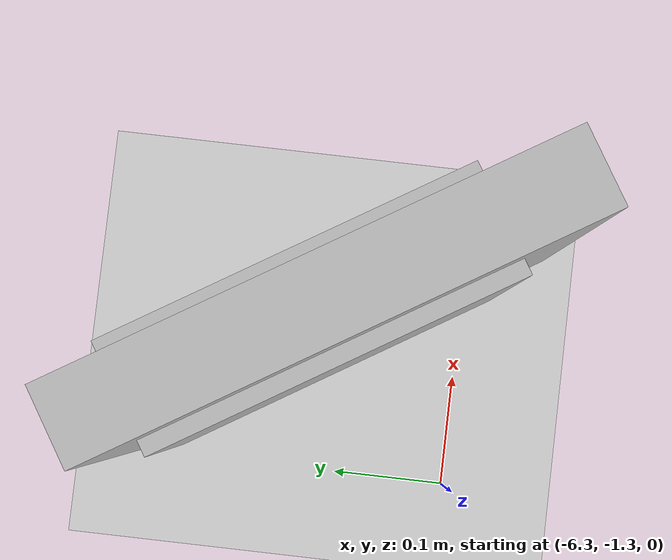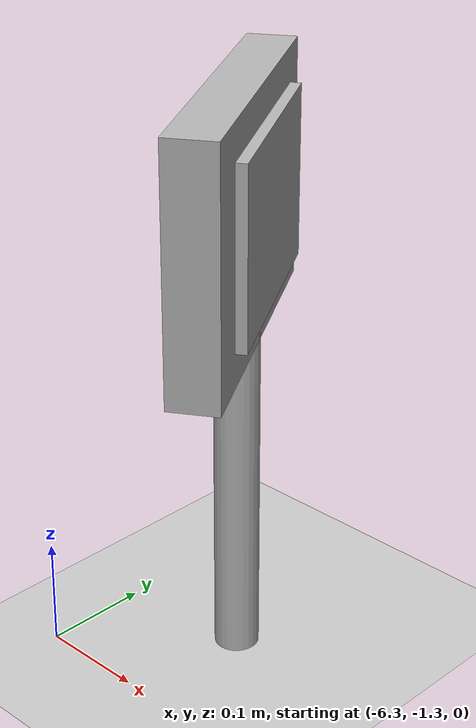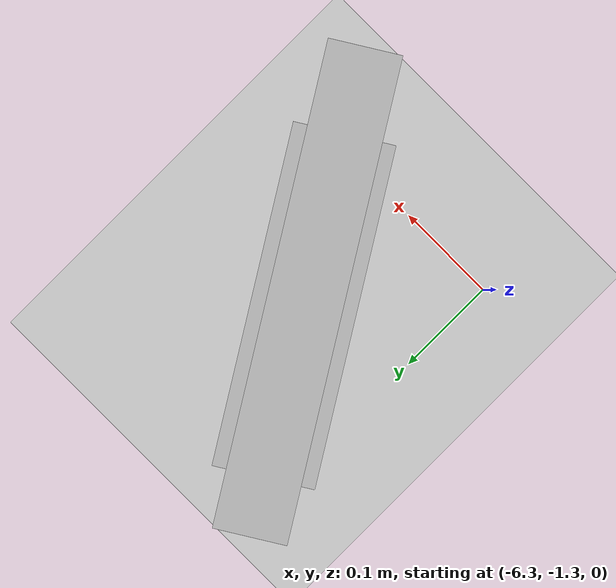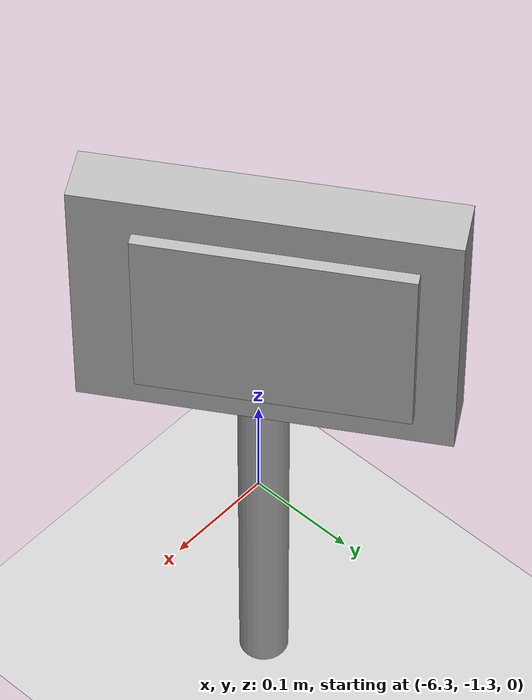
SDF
<sdf version="1.7">
 <world name="default">
  <model name="ground_plane">
   <static>1</static>
   <link name="link">
    <collision name="collision">
     <geometry><plane><normal>0 0 1</normal><size>100 100</size></plane></geometry>
     <surface>
      <contact><collide_bitmask>65535</collide_bitmask></contact>
      <friction><ode><mu>100</mu><mu2>50</mu2></ode></friction>
     </surface>
    </collision>
    <visual name="visual">
     <cast_shadows>0</cast_shadows>
     <geometry><plane><normal>0 0 1</normal><size>100 100</size></plane></geometry>
     <material>
      <script><uri>file://media/materials/scripts/gazebo.material</uri><name>Gazebo/Grey</name></script>
     </material>
    </visual>
   </link>
  </model>
  <model name="letrero_chocho_7">
   <link name="link_0">
    <inertial>
     <mass>0.0543151</mass>
     <inertia>
      <ixx>4.90351e-06</ixx>
      <ixy>0</ixy>
      <ixz>0</ixz>
      <iyy>4.90351e-06</iyy>
      <iyz>0</iyz>
      <izz>1.12837e-07</izz>
     </inertia>
    </inertial>
    <pose>0.002515 0.005109 0.153562 0 -0 0</pose>
    <visual name="visual">
     <geometry><cylinder><radius>0.0203836</radius><length>0.327243</length></cylinder></geometry>
     <material>
      <lighting>1</lighting>
      <script>
       <uri>model://letrero_chocho/madera/scripts</uri>
       <uri>model://letrero_chocho/madera/textures</uri>
       <name>textur/madera</name>
      </script>
      <shader type="pixel"/>
      <emissive>0 0 0 1</emissive>
     </material>
    </visual>
    <collision name="collision">
     <geometry><cylinder><radius>0.020384</radius><length>0.327243</length></cylinder></geometry>
     <surface>
      <friction>
       <ode><mu>1</mu><mu2>1</mu2><fdir1>0 0 0</fdir1><slip1>0</slip1><slip2>0</slip2></ode>
       <torsional>
        <coefficient>1</coefficient>
        <patch_radius>0</patch_radius>
        <surface_radius>0</surface_radius>
        <use_patch_radius>1</use_patch_radius>
        <ode><slip>0</slip></ode>
       </torsional>
      </friction>
      <bounce><restitution_coefficient>0</restitution_coefficient><threshold>1e+06</threshold></bounce>
      <contact>
       <collide_without_contact>0</collide_without_contact>
       <collide_without_contact_bitmask>1</collide_without_contact_bitmask>
       <collide_bitmask>1</collide_bitmask>
       <ode>
        <soft_cfm>0</soft_cfm>
        <soft_erp>0.2</soft_erp>
        <kp>1e+13</kp>
        <kd>1</kd>
        <max_vel>0.01</max_vel>
        <min_depth>0</min_depth>
       </ode>
       <bullet>
        <split_impulse>1</split_impulse>
        <split_impulse_penetration_threshold>-0.01</split_impulse_penetration_threshold>
        <soft_cfm>0</soft_cfm>
        <soft_erp>0.2</soft_erp>
        <kp>1e+13</kp>
        <kd>1</kd>
       </bullet>
      </contact>
     </surface>
    </collision>
   </link>
   <link name="link_1">
    <inertial>
     <mass>0.00299633</mass>
     <inertia>
      <ixx>1.27855e-05</ixx>
      <ixy>0</ixy>
      <ixz>0</ixz>
      <iyy>3.42923e-05</iyy>
      <iyz>0</iyz>
      <izz>2.25402e-05</izz>
     </inertia>
    </inertial>
    <pose>-0.001542 0.002452 0.422031 0 -0 0</pose>
    <visual name="visual">
     <geometry><box><size>0.296988 0.04549 0.221665</size></box></geometry>
     <material>
      <lighting>1</lighting>
      <script>
       <uri>model://letrero_chocho/madera/scripts</uri>
       <uri>model://letrero_chocho/madera/textures</uri>
       <name>textur/madera</name>
      </script>
      <shader type="pixel"/>
      <emissive>0 0 0 1</emissive>
     </material>
    </visual>
    <collision name="collision">
     <geometry><box><size>0.296988 0.04549 0.221665</size></box></geometry>
     <surface>
      <friction>
       <ode><mu>1</mu><mu2>1</mu2><fdir1>0 0 0</fdir1><slip1>0</slip1><slip2>0</slip2></ode>
       <torsional>
        <coefficient>1</coefficient>
        <patch_radius>0</patch_radius>
        <surface_radius>0</surface_radius>
        <use_patch_radius>1</use_patch_radius>
        <ode><slip>0</slip></ode>
       </torsional>
      </friction>
      <bounce><restitution_coefficient>0</restitution_coefficient><threshold>1e+06</threshold></bounce>
      <contact>
       <collide_without_contact>0</collide_without_contact>
       <collide_without_contact_bitmask>1</collide_without_contact_bitmask>
       <collide_bitmask>1</collide_bitmask>
       <ode>
        <soft_cfm>0</soft_cfm>
        <soft_erp>0.2</soft_erp>
        <kp>1e+13</kp>
        <kd>1</kd>
        <max_vel>0.01</max_vel>
        <min_depth>0</min_depth>
       </ode>
       <bullet>
        <split_impulse>1</split_impulse>
        <split_impulse_penetration_threshold>-0.01</split_impulse_penetration_threshold>
        <soft_cfm>0</soft_cfm>
        <soft_erp>0.2</soft_erp>
        <kp>1e+13</kp>
        <kd>1</kd>
       </bullet>
      </contact>
     </surface>
    </collision>
   </link>
   <link name="link_2">
    <inertial>
     <mass>0.00173577</mass>
     <inertia>
      <ixx>4.23206e-06</ixx>
      <ixy>0</ixy>
      <ixz>0</ixz>
      <iyy>1.03921e-05</iyy>
      <iyz>0</iyz>
      <izz>7.37287e-06</izz>
     </inertia>
    </inertial>
    <pose>-0.010225 0.002657 0.421501 0 -0 0</pose>
    <visual name="visual">
     <geometry><box><size>0.216284 0.064749 0.15832</size></box></geometry>
     <material>
      <lighting>1</lighting>
      <script>
       <uri>model://letrero_chocho/materials/scripts</uri>
       <uri>model://letrero_chocho/materials/textures</uri>
       <name>textur/cho</name>
      </script>
      <shader type="pixel"/>
      <emissive>0 0 0 1</emissive>
     </material>
    </visual>
    <collision name="collision">
     <geometry><box><size>0.216284 0.064749 0.15832</size></box></geometry>
     <surface>
      <friction>
       <ode><mu>1</mu><mu2>1</mu2><fdir1>0 0 0</fdir1><slip1>0</slip1><slip2>0</slip2></ode>
       <torsional>
        <coefficient>1</coefficient>
        <patch_radius>0</patch_radius>
        <surface_radius>0</surface_radius>
        <use_patch_radius>1</use_patch_radius>
        <ode><slip>0</slip></ode>
       </torsional>
      </friction>
      <bounce><restitution_coefficient>0</restitution_coefficient><threshold>1e+06</threshold></bounce>
      <contact>
       <collide_without_contact>0</collide_without_contact>
       <collide_without_contact_bitmask>1</collide_without_contact_bitmask>
       <collide_bitmask>1</collide_bitmask>
       <ode>
        <soft_cfm>0</soft_cfm>
        <soft_erp>0.2</soft_erp>
        <kp>1e+13</kp>
        <kd>1</kd>
        <max_vel>0.01</max_vel>
        <min_depth>0</min_depth>
       </ode>
       <bullet>
        <split_impulse>1</split_impulse>
        <split_impulse_penetration_threshold>-0.01</split_impulse_penetration_threshold>
        <soft_cfm>0</soft_cfm>
        <soft_erp>0.2</soft_erp>
        <kp>1e+13</kp>
        <kd>1</kd>
       </bullet>
      </contact>
     </surface>
    </collision>
   </link>
   <joint name="link_0_JOINT_1" type="fixed">
    <parent>link_0</parent>
    <child>link_1</child>
    <physics>
     <ode><limit><cfm>0</cfm><erp>0.2</erp></limit><suspension><cfm>0</cfm><erp>0.2</erp></suspension></ode>
    </physics>
   </joint>
   <joint name="link_0_JOINT_2" type="fixed">
    <parent>link_0</parent>
    <child>link_2</child>
    <physics>
     <ode><limit><cfm>0</cfm><erp>0.2</erp></limit><suspension><cfm>0</cfm><erp>0.2</erp></suspension></ode>
    </physics>
   </joint>
   <static>1</static>
   <pose>-6.18468 -1.18329 0 0 0 -1.01783</pose>
  </model>
 </world>
</sdf>
